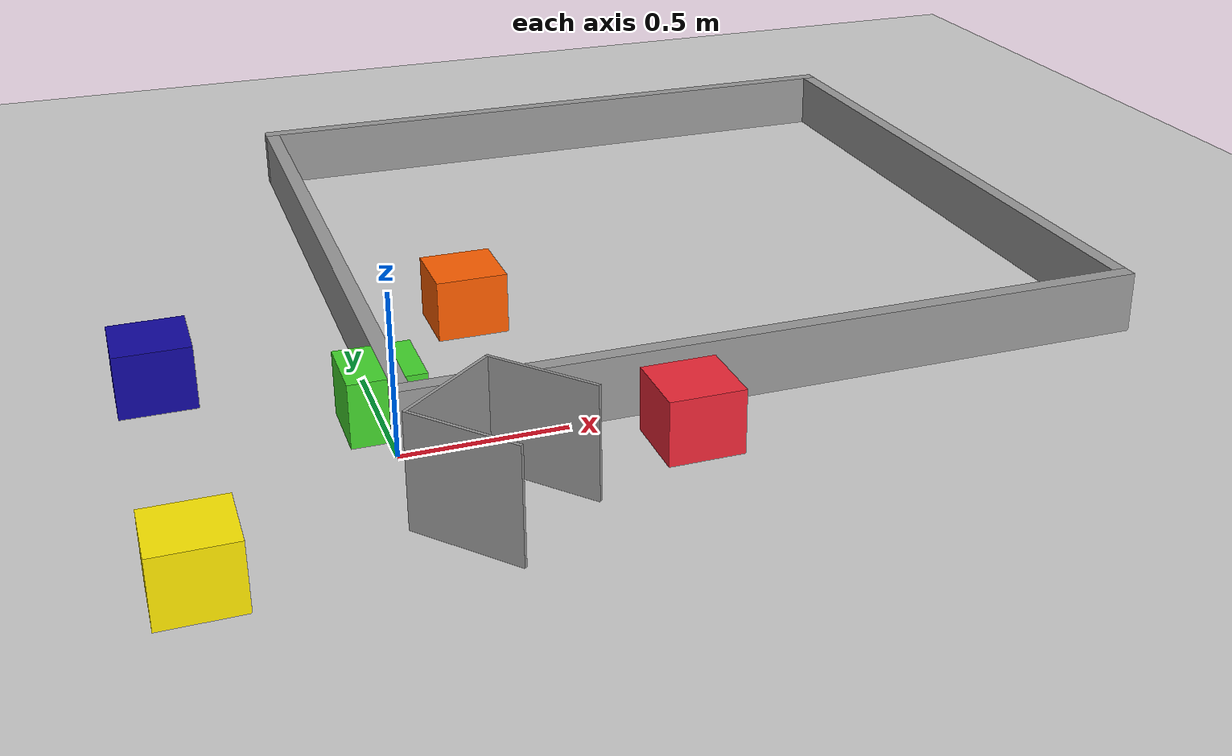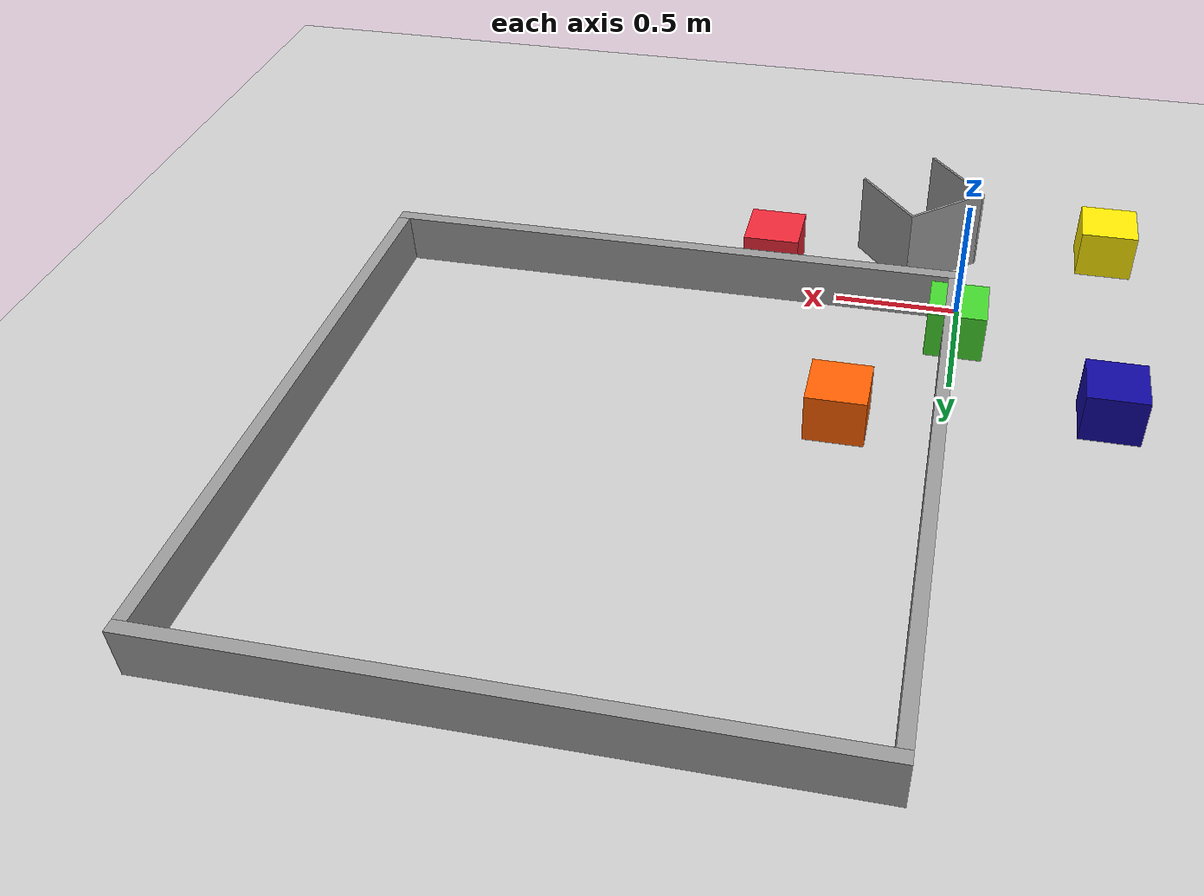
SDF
<sdf version="1.6">
 <world name="wro_world">
  <include><uri>model://sun</uri></include>
  <include><uri>model://ground_plane</uri></include>
  <include><uri>model://arenawalls</uri></include>
  <include><uri>model://blue_box_2</uri><pose>-.6 .6 0 0 0 0</pose></include>
  <include><uri>model://orange_box_0</uri><pose>.4 .8 0 0 0 0</pose></include>
  <include><uri>model://green_box_0</uri><pose>0 .2 0 0 0 0</pose></include>
  <include><uri>model://red_box_1</uri><pose>.8 -.2 0 0 0 0</pose></include>
  <include><uri>model://yellow_box_0</uri><pose>-.6 -.5 0 0 0 0</pose></include>
  <include><uri>model://parking_zone</uri><pose>.2 -.4 0 0 0 -2.44</pose></include>
 </world>
</sdf>

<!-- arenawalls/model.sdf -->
<sdf version='1.6'>
  <model name='arenawalls'>
    <pose frame=''>1.2 1.2 0 0 -0 0</pose>
    <link name='Wall_0'>
      <collision name='Wall_0_Collision'>
        <geometry>
          <box>
            <size>2.4 0.05 0.2</size>
          </box>
        </geometry>
        <pose frame=''>0 0 0.1 0 -0 0</pose>
      </collision>
      <visual name='Wall_0_Visual'>
        <pose frame=''>0 0 0.1 0 -0 0</pose>
        <geometry>
          <box>
            <size>2.4 0.05 0.2</size>
          </box>
        </geometry>
        <material>
          <script>
            <uri>file://media/materials/scripts/gazebo.material</uri>
            <name>Gazebo/Grey</name>
          </script>
          <ambient>0 0 0 1</ambient>
        </material>
      </visual>
      <pose frame=''>0 -1.175 0 0 -0 0</pose>
    </link>
    <link name='Wall_2'>
      <collision name='Wall_2_Collision'>
        <geometry>
          <box>
            <size>2.4 0.05 0.2</size>
          </box>
        </geometry>
        <pose frame=''>0 0 0.1 0 -0 0</pose>
      </collision>
      <visual name='Wall_2_Visual'>
        <pose frame=''>0 0 0.1 0 -0 0</pose>
        <geometry>
          <box>
            <size>2.4 0.05 0.2</size>
          </box>
        </geometry>
        <material>
          <script>
            <uri>file://media/materials/scripts/gazebo.material</uri>
            <name>Gazebo/Grey</name>
          </script>
          <ambient>0 0 0 1</ambient>
        </material>
      </visual>
      <pose frame=''>0 1.175 0 0 -0 0</pose>
    </link>
    <link name='Wall_4'>
      <collision name='Wall_4_Collision'>
        <geometry>
          <box>
            <size>2.3 0.05 0.2</size>
          </box>
        </geometry>
        <pose frame=''>0 0 0.1 0 -0 0</pose>
      </collision>
      <visual name='Wall_4_Visual'>
        <pose frame=''>0 0 0.1 0 -0 0</pose>
        <geometry>
          <box>
            <size>2.3 0.05 0.2</size>
          </box>
        </geometry>
        <material>
          <script>
            <uri>file://media/materials/scripts/gazebo.material</uri>
            <name>Gazebo/Grey</name>
          </script>
          <ambient>0 0 0 1</ambient>
        </material>
      </visual>
      <pose frame=''>-1.175 0 0 0 -0 1.5708</pose>
    </link>
    <link name='Wall_6'>
      <collision name='Wall_6_Collision'>
        <geometry>
          <box>
            <size>2.3 0.05 0.2</size>
          </box>
        </geometry>
        <pose frame=''>0 0 0.1 0 -0 0</pose>
      </collision>
      <visual name='Wall_6_Visual'>
        <pose frame=''>0 0 0.1 0 -0 0</pose>
        <geometry>
          <box>
            <size>2.3 0.05 0.2</size>
          </box>
        </geometry>
        <material>
          <script>
            <uri>file://media/materials/scripts/gazebo.material</uri>
            <name>Gazebo/Grey</name>
          </script>
          <ambient>0 0 0 1</ambient>
        </material>
      </visual>
      <pose frame=''>1.175 0 0 0 -0 1.5708</pose>
    </link>
    <static>1</static>
  </model>
</sdf>

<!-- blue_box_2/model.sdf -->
<sdf version='1.6'>
  <model name='blue_box_2'>
    <link name='link_0'>
      <pose frame=''>0 0 0.1 0 -0 0</pose>
      <inertial>
        <mass>1</mass>
        <inertia>
          <ixx>0.166667</ixx>
          <ixy>0</ixy>
          <ixz>0</ixz>
          <iyy>0.166667</iyy>
          <iyz>0</iyz>
          <izz>0.166667</izz>
        </inertia>
        <pose frame=''>0 0 0 0 -0 0</pose>
      </inertial>
      <self_collide>0</self_collide>
      <kinematic>0</kinematic>
      <gravity>1</gravity>
      <visual name='visual'>
        <pose frame=''>0 0 0 0 -0 0</pose>
        <geometry>
          <box>
            <size>0.23 0.23 0.2</size>
          </box>
        </geometry>
        <material>
          <lighting>1</lighting>
          <script>
            <uri>file://media/materials/scripts/gazebo.material</uri>
            <name>Gazebo/Grey</name>
          </script>
          <ambient>0.063 0.024 0.624 1</ambient>
          <diffuse>0.063 0.024 0.624 1</diffuse>
          <specular>0.063 0.024 0.624 1</specular>
          <emissive>0 0 0 1</emissive>
          <shader type='vertex'>
            <normal_map>__default__</normal_map>
          </shader>
        </material>
        <cast_shadows>1</cast_shadows>
        <transparency>0</transparency>
      </visual>
      <collision name='collision'>
        <laser_retro>0</laser_retro>
        <max_contacts>10</max_contacts>
        <pose frame=''>0 0 0 0 -0 0</pose>
        <geometry>
          <box>
            <size>0.23 0.23 0.2</size>
          </box>
        </geometry>
        <surface>
          <friction>
            <ode>
              <mu>1</mu>
              <mu2>1</mu2>
              <fdir1>0 0 0</fdir1>
              <slip1>0</slip1>
              <slip2>0</slip2>
            </ode>
            <torsional>
              <coefficient>1</coefficient>
              <patch_radius>0</patch_radius>
              <surface_radius>0</surface_radius>
              <use_patch_radius>1</use_patch_radius>
              <ode>
                <slip>0</slip>
              </ode>
            </torsional>
          </friction>
          <bounce>
            <restitution_coefficient>0</restitution_coefficient>
            <threshold>1e+06</threshold>
          </bounce>
          <contact>
            <collide_without_contact>0</collide_without_contact>
            <collide_without_contact_bitmask>1</collide_without_contact_bitmask>
            <collide_bitmask>1</collide_bitmask>
            <ode>
              <soft_cfm>0</soft_cfm>
              <soft_erp>0.2</soft_erp>
              <kp>1e+13</kp>
              <kd>1</kd>
              <max_vel>0.01</max_vel>
              <min_depth>0</min_depth>
            </ode>
            <bullet>
              <split_impulse>1</split_impulse>
              <split_impulse_penetration_threshold>-0.01</split_impulse_penetration_threshold>
              <soft_cfm>0</soft_cfm>
              <soft_erp>0.2</soft_erp>
              <kp>1e+13</kp>
              <kd>1</kd>
            </bullet>
          </contact>
        </surface>
      </collision>
    </link>
    <static>1</static>
    <allow_auto_disable>1</allow_auto_disable>
  </model>
</sdf>

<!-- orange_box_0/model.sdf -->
<sdf version='1.6'>
  <model name='orange_box_0'>
    <link name='link_3'>
      <pose frame=''>0 0 0.1 0 -0 0</pose>
      <inertial>
        <mass>1</mass>
        <inertia>
          <ixx>0.166667</ixx>
          <ixy>0</ixy>
          <ixz>0</ixz>
          <iyy>0.166667</iyy>
          <iyz>0</iyz>
          <izz>0.166667</izz>
        </inertia>
        <pose frame=''>0 0 0 0 -0 0</pose>
      </inertial>
      <self_collide>0</self_collide>
      <kinematic>0</kinematic>
      <gravity>1</gravity>
      <visual name='visual'>
        <pose frame=''>0 0 0 0 -0 0</pose>
        <geometry>
          <box>
            <size>0.23 0.23 0.2</size>
          </box>
        </geometry>
        <material>
          <lighting>1</lighting>
          <script>
            <uri>file://media/materials/scripts/gazebo.material</uri>
            <name>Gazebo/Grey</name>
          </script>
          <ambient>0.996 0.369 0 1</ambient>
          <diffuse>0.996 0.369 0 1</diffuse>
          <specular>0.996 0.369 0 1</specular>
          <emissive>0 0 0 1</emissive>
          <shader type='vertex'>
            <normal_map>__default__</normal_map>
          </shader>
        </material>
        <cast_shadows>1</cast_shadows>
        <transparency>0</transparency>
      </visual>
      <collision name='collision'>
        <laser_retro>0</laser_retro>
        <max_contacts>10</max_contacts>
        <pose frame=''>0 0 0 0 -0 0</pose>
        <geometry>
          <box>
            <size>0.23 0.23 0.2</size>
          </box>
        </geometry>
        <surface>
          <friction>
            <ode>
              <mu>1</mu>
              <mu2>1</mu2>
              <fdir1>0 0 0</fdir1>
              <slip1>0</slip1>
              <slip2>0</slip2>
            </ode>
            <torsional>
              <coefficient>1</coefficient>
              <patch_radius>0</patch_radius>
              <surface_radius>0</surface_radius>
              <use_patch_radius>1</use_patch_radius>
              <ode>
                <slip>0</slip>
              </ode>
            </torsional>
          </friction>
          <bounce>
            <restitution_coefficient>0</restitution_coefficient>
            <threshold>1e+06</threshold>
          </bounce>
          <contact>
            <collide_without_contact>0</collide_without_contact>
            <collide_without_contact_bitmask>1</collide_without_contact_bitmask>
            <collide_bitmask>1</collide_bitmask>
            <ode>
              <soft_cfm>0</soft_cfm>
              <soft_erp>0.2</soft_erp>
              <kp>1e+13</kp>
              <kd>1</kd>
              <max_vel>0.01</max_vel>
              <min_depth>0</min_depth>
            </ode>
            <bullet>
              <split_impulse>1</split_impulse>
              <split_impulse_penetration_threshold>-0.01</split_impulse_penetration_threshold>
              <soft_cfm>0</soft_cfm>
              <soft_erp>0.2</soft_erp>
              <kp>1e+13</kp>
              <kd>1</kd>
            </bullet>
          </contact>
        </surface>
      </collision>
    </link>
    <static>1</static>
    <allow_auto_disable>1</allow_auto_disable>
  </model>
</sdf>

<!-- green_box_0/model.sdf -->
<sdf version='1.6'>
  <model name='green_box_0'>
    <link name='link_2'>
      <pose frame=''>0 0 0.1 0 -0 0</pose>
      <inertial>
        <mass>1</mass>
        <inertia>
          <ixx>0.166667</ixx>
          <ixy>0</ixy>
          <ixz>0</ixz>
          <iyy>0.166667</iyy>
          <iyz>0</iyz>
          <izz>0.166667</izz>
        </inertia>
        <pose frame=''>0 0 0 0 -0 0</pose>
      </inertial>
      <self_collide>0</self_collide>
      <kinematic>0</kinematic>
      <gravity>1</gravity>
      <visual name='visual'>
        <pose frame=''>0 0 0 0 -0 0</pose>
        <geometry>
          <box>
            <size>0.23 0.23 0.2</size>
          </box>
        </geometry>
        <material>
          <lighting>1</lighting>
          <script>
            <uri>file://media/materials/scripts/gazebo.material</uri>
            <name>Gazebo/Grey</name>
          </script>
          <ambient>0.267 0.839 0.173 1</ambient>
          <diffuse>0.267 0.839 0.173 1</diffuse>
          <specular>0.267 0.839 0.173 1</specular>
          <emissive>0 0 0 1</emissive>
          <shader type='vertex'>
            <normal_map>__default__</normal_map>
          </shader>
        </material>
        <cast_shadows>1</cast_shadows>
        <transparency>0</transparency>
      </visual>
      <collision name='collision'>
        <laser_retro>0</laser_retro>
        <max_contacts>10</max_contacts>
        <pose frame=''>0 0 0 0 -0 0</pose>
        <geometry>
          <box>
            <size>0.23 0.23 0.2</size>
          </box>
        </geometry>
        <surface>
          <friction>
            <ode>
              <mu>1</mu>
              <mu2>1</mu2>
              <fdir1>0 0 0</fdir1>
              <slip1>0</slip1>
              <slip2>0</slip2>
            </ode>
            <torsional>
              <coefficient>1</coefficient>
              <patch_radius>0</patch_radius>
              <surface_radius>0</surface_radius>
              <use_patch_radius>1</use_patch_radius>
              <ode>
                <slip>0</slip>
              </ode>
            </torsional>
          </friction>
          <bounce>
            <restitution_coefficient>0</restitution_coefficient>
            <threshold>1e+06</threshold>
          </bounce>
          <contact>
            <collide_without_contact>0</collide_without_contact>
            <collide_without_contact_bitmask>1</collide_without_contact_bitmask>
            <collide_bitmask>1</collide_bitmask>
            <ode>
              <soft_cfm>0</soft_cfm>
              <soft_erp>0.2</soft_erp>
              <kp>1e+13</kp>
              <kd>1</kd>
              <max_vel>0.01</max_vel>
              <min_depth>0</min_depth>
            </ode>
            <bullet>
              <split_impulse>1</split_impulse>
              <split_impulse_penetration_threshold>-0.01</split_impulse_penetration_threshold>
              <soft_cfm>0</soft_cfm>
              <soft_erp>0.2</soft_erp>
              <kp>1e+13</kp>
              <kd>1</kd>
            </bullet>
          </contact>
        </surface>
      </collision>
    </link>
    <static>1</static>
    <allow_auto_disable>1</allow_auto_disable>
  </model>
</sdf>

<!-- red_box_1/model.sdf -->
<sdf version='1.6'>
  <model name='red_box_1'>
    <link name='link_1'>
      <pose frame=''>0 0 0.1 0 -0 0</pose>
      <inertial>
        <mass>1</mass>
        <inertia>
          <ixx>0.166667</ixx>
          <ixy>0</ixy>
          <ixz>0</ixz>
          <iyy>0.166667</iyy>
          <iyz>0</iyz>
          <izz>0.166667</izz>
        </inertia>
        <pose frame=''>0 0 0 0 -0 0</pose>
      </inertial>
      <self_collide>0</self_collide>
      <kinematic>0</kinematic>
      <gravity>1</gravity>
      <visual name='visual'>
        <pose frame=''>0 0 0 0 -0 0</pose>
        <geometry>
          <box>
            <size>0.23 0.23 0.2</size>
          </box>
        </geometry>
        <material>
          <lighting>1</lighting>
          <script>
            <uri>file://media/materials/scripts/gazebo.material</uri>
            <name>Gazebo/Grey</name>
          </script>
          <ambient>0.933 0.153 0.216 1</ambient>
          <diffuse>0.933 0.153 0.216 1</diffuse>
          <specular>0.933 0.153 0.216 1</specular>
          <emissive>0 0 0 1</emissive>
          <shader type='vertex'>
            <normal_map>__default__</normal_map>
          </shader>
        </material>
        <cast_shadows>1</cast_shadows>
        <transparency>0</transparency>
      </visual>
      <collision name='collision'>
        <laser_retro>0</laser_retro>
        <max_contacts>10</max_contacts>
        <pose frame=''>0 0 0 0 -0 0</pose>
        <geometry>
          <box>
            <size>0.23 0.23 0.2</size>
          </box>
        </geometry>
        <surface>
          <friction>
            <ode>
              <mu>1</mu>
              <mu2>1</mu2>
              <fdir1>0 0 0</fdir1>
              <slip1>0</slip1>
              <slip2>0</slip2>
            </ode>
            <torsional>
              <coefficient>1</coefficient>
              <patch_radius>0</patch_radius>
              <surface_radius>0</surface_radius>
              <use_patch_radius>1</use_patch_radius>
              <ode>
                <slip>0</slip>
              </ode>
            </torsional>
          </friction>
          <bounce>
            <restitution_coefficient>0</restitution_coefficient>
            <threshold>1e+06</threshold>
          </bounce>
          <contact>
            <collide_without_contact>0</collide_without_contact>
            <collide_without_contact_bitmask>1</collide_without_contact_bitmask>
            <collide_bitmask>1</collide_bitmask>
            <ode>
              <soft_cfm>0</soft_cfm>
              <soft_erp>0.2</soft_erp>
              <kp>1e+13</kp>
              <kd>1</kd>
              <max_vel>0.01</max_vel>
              <min_depth>0</min_depth>
            </ode>
            <bullet>
              <split_impulse>1</split_impulse>
              <split_impulse_penetration_threshold>-0.01</split_impulse_penetration_threshold>
              <soft_cfm>0</soft_cfm>
              <soft_erp>0.2</soft_erp>
              <kp>1e+13</kp>
              <kd>1</kd>
            </bullet>
          </contact>
        </surface>
      </collision>
    </link>
    <static>1</static>
    <allow_auto_disable>1</allow_auto_disable>
  </model>
</sdf>

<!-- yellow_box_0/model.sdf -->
<sdf version='1.6'>
  <model name='yellow_box_0'>
    <link name='link_4'>
      <pose frame=''>0 0 0.1 0 -0 0</pose>
      <inertial>
        <mass>1</mass>
        <inertia>
          <ixx>0.166667</ixx>
          <ixy>0</ixy>
          <ixz>0</ixz>
          <iyy>0.166667</iyy>
          <iyz>0</iyz>
          <izz>0.166667</izz>
        </inertia>
        <pose frame=''>0 0 0 0 -0 0</pose>
      </inertial>
      <self_collide>0</self_collide>
      <kinematic>0</kinematic>
      <gravity>1</gravity>
      <visual name='visual'>
        <pose frame=''>0 0 0 0 -0 0</pose>
        <geometry>
          <box>
            <size>0.23 0.23 0.2</size>
          </box>
        </geometry>
        <material>
          <lighting>1</lighting>
          <script>
            <uri>file://media/materials/scripts/gazebo.material</uri>
            <name>Gazebo/Grey</name>
          </script>
          <ambient>0.996 0.914 0 1</ambient>
          <diffuse>0.996 0.914 0 1</diffuse>
          <specular>0.996 0.914 0 1</specular>
          <emissive>0 0 0 1</emissive>
          <shader type='vertex'>
            <normal_map>__default__</normal_map>
          </shader>
        </material>
        <cast_shadows>1</cast_shadows>
        <transparency>0</transparency>
      </visual>
      <collision name='collision'>
        <laser_retro>0</laser_retro>
        <max_contacts>10</max_contacts>
        <pose frame=''>0 0 0 0 -0 0</pose>
        <geometry>
          <box>
            <size>0.23 0.23 0.2</size>
          </box>
        </geometry>
        <surface>
          <friction>
            <ode>
              <mu>1</mu>
              <mu2>1</mu2>
              <fdir1>0 0 0</fdir1>
              <slip1>0</slip1>
              <slip2>0</slip2>
            </ode>
            <torsional>
              <coefficient>1</coefficient>
              <patch_radius>0</patch_radius>
              <surface_radius>0</surface_radius>
              <use_patch_radius>1</use_patch_radius>
              <ode>
                <slip>0</slip>
              </ode>
            </torsional>
          </friction>
          <bounce>
            <restitution_coefficient>0</restitution_coefficient>
            <threshold>1e+06</threshold>
          </bounce>
          <contact>
            <collide_without_contact>0</collide_without_contact>
            <collide_without_contact_bitmask>1</collide_without_contact_bitmask>
            <collide_bitmask>1</collide_bitmask>
            <ode>
              <soft_cfm>0</soft_cfm>
              <soft_erp>0.2</soft_erp>
              <kp>1e+13</kp>
              <kd>1</kd>
              <max_vel>0.01</max_vel>
              <min_depth>0</min_depth>
            </ode>
            <bullet>
              <split_impulse>1</split_impulse>
              <split_impulse_penetration_threshold>-0.01</split_impulse_penetration_threshold>
              <soft_cfm>0</soft_cfm>
              <soft_erp>0.2</soft_erp>
              <kp>1e+13</kp>
              <kd>1</kd>
            </bullet>
          </contact>
        </surface>
      </collision>
    </link>
    <static>1</static>
    <allow_auto_disable>1</allow_auto_disable>
  </model>
</sdf>

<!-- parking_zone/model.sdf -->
<sdf version='1.6'>
  <model name='parking_zone'>
    <pose frame=''>-3.009 -2.1325 0 0 -0 0</pose>
    <link name='Wall_0'>
      <collision name='Wall_0_Collision'>
        <geometry>
          <box>
            <size>0.355 0.01 0.345</size>
          </box>
        </geometry>
        <pose frame=''>0 0 0.1725 0 -0 0</pose>
      </collision>
      <visual name='Wall_0_Visual'>
        <pose frame=''>0 0 0.1725 0 -0 0</pose>
        <geometry>
          <box>
            <size>0.355 0.01 0.345</size>
          </box>
        </geometry>
        <material>
          <script>
            <uri>file://media/materials/scripts/gazebo.material</uri>
            <name>Gazebo/Grey</name>
          </script>
          <ambient>1 1 1 1</ambient>
        </material>
      </visual>
      <pose frame=''>-0.181 0 0 0 0 -1.5708</pose>
    </link>
    <link name='Wall_2'>
      <collision name='Wall_2_Collision'>
        <geometry>
          <box>
            <size>0.372 0.01 0.345</size>
          </box>
        </geometry>
        <pose frame=''>0 0 0.1725 0 -0 0</pose>
      </collision>
      <visual name='Wall_2_Visual'>
        <pose frame=''>0 0 0.1725 0 -0 0</pose>
        <geometry>
          <box>
            <size>0.372 0.01 0.345</size>
          </box>
        </geometry>
        <material>
          <script>
            <uri>file://media/materials/scripts/gazebo.material</uri>
            <name>Gazebo/Grey</name>
          </script>
          <ambient>1 1 1 1</ambient>
        </material>
      </visual>
      <pose frame=''>0 -0.1725 0 0 -0 0</pose>
    </link>
    <link name='Wall_4'>
      <collision name='Wall_4_Collision'>
        <geometry>
          <box>
            <size>0.355 0.01 0.345</size>
          </box>
        </geometry>
        <pose frame=''>0 0 0.1725 0 -0 0</pose>
      </collision>
      <visual name='Wall_4_Visual'>
        <pose frame=''>0 0 0.1725 0 -0 0</pose>
        <geometry>
          <box>
            <size>0.355 0.01 0.345</size>
          </box>
        </geometry>
        <material>
          <script>
            <uri>file://media/materials/scripts/gazebo.material</uri>
            <name>Gazebo/Grey</name>
          </script>
          <ambient>1 1 1 1</ambient>
        </material>
      </visual>
      <pose frame=''>0.181 0 0 0 -0 1.5708</pose>
    </link>
    <static>1</static>
  </model>
</sdf>
